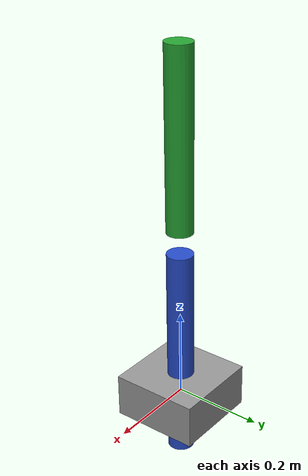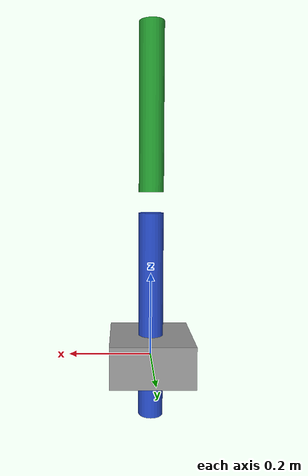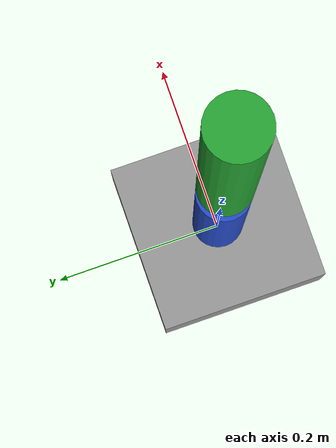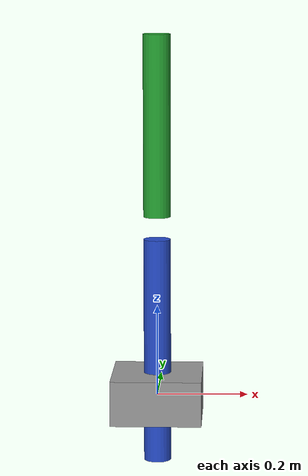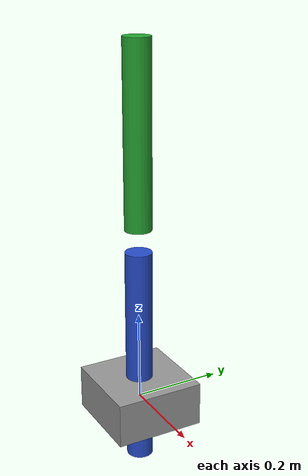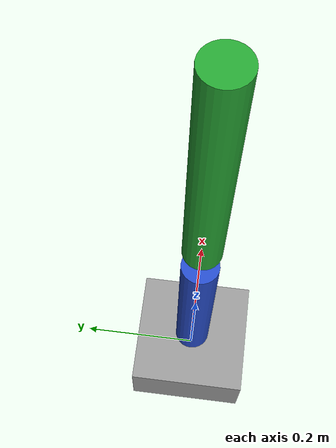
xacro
<?xml version="1.0"?>
<robot name="two_link_arm" xmlns:xacro="http://www.ros.org/wiki/xacro">

  <!-- base_link -->
  <link name="base_link">
    <visual>
      <geometry>
        <box size="0.2 0.2 0.1"/>
      </geometry>
      <material name="gray"/>
    </visual>
    <collision>
      <geometry>
        <box size="0.2 0.2 0.1"/>
      </geometry>
    </collision>
    <inertial>
      <mass value="1.0"/>
      <inertia ixx="0.01" ixy="0.0" ixz="0.0" iyy="0.01" iyz="0.0" izz="0.01"/>
    </inertial>
  </link>

  <!-- link1 -->
  <link name="link1">
    <visual>
      <geometry>
        <cylinder radius="0.03" length="0.5"/>
      </geometry>
      <material name="blue"/>
    </visual>
    <collision>
      <geometry>
        <cylinder radius="0.03" length="0.5"/>
      </geometry>
    </collision>
    <inertial>
      <mass value="0.5"/>
      <inertia ixx="0.01" ixy="0.0" ixz="0.0" iyy="0.01" iyz="0.0" izz="0.01"/>
    </inertial>
  </link>

  <!-- joint1: base_link → link1 -->
  <joint name="joint1" type="revolute">
    <parent link="base_link"/>
    <child link="link1"/>
    <origin xyz="0 0 0.1" rpy="0 0 0"/>
    <axis xyz="0 0 1"/>
    <limit lower="-1.57" upper="1.57" effort="10.0" velocity="1.0"/>
    <dynamics damping="0.1" friction="0.1"/>
  </joint>

  <!-- link2 -->
  <link name="link2">
    <visual>
      <geometry>
        <cylinder radius="0.03" length="0.4"/>
      </geometry>
      <material name="green"/>
    </visual>
    <collision>
      <geometry>
        <cylinder radius="0.03" length="0.4"/>
      </geometry>
    </collision>
    <inertial>
      <mass value="0.4"/>
      <inertia ixx="0.005" ixy="0.0" ixz="0.0" iyy="0.005" iyz="0.0" izz="0.005"/>
    </inertial>
  </link>

  <!-- joint2: link1 → link2 -->
  <joint name="joint2" type="revolute">
    <parent link="link1"/>
    <child link="link2"/>
    <origin xyz="0 0 0.5" rpy="0 0 0"/>
    <axis xyz="0 0 1"/>
    <limit lower="-1.57" upper="1.57" effort="10.0" velocity="1.0"/>
    <dynamics damping="0.1" friction="0.1"/>
  </joint>

</robot>
